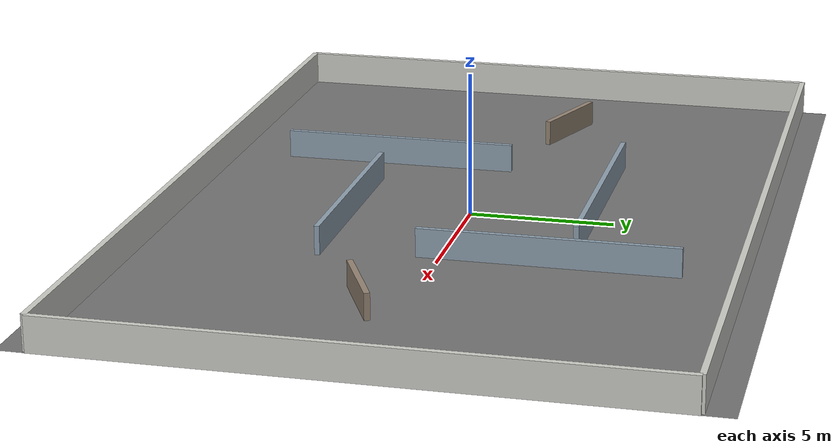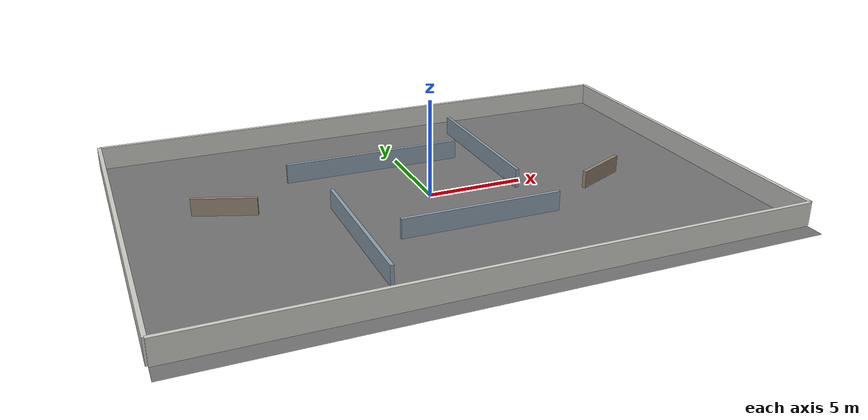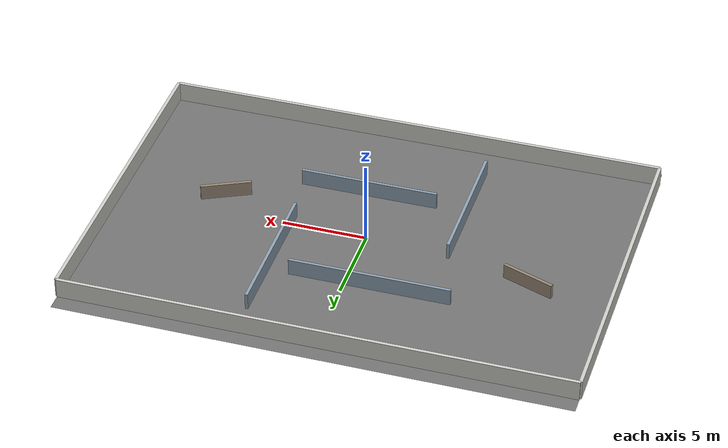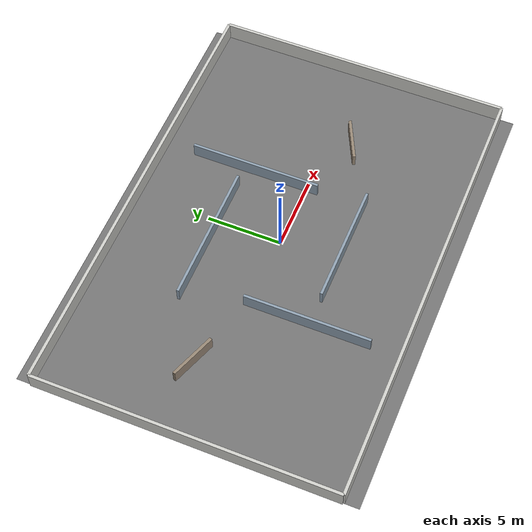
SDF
<?xml version="1.0" ?>
<sdf version="1.6">
  <world name="rescue_walls_easy">
    <plugin name="gazebo_ros_init" filename="libgazebo_ros_init.so"/>
    <plugin name="gazebo_ros_factory" filename="libgazebo_ros_factory.so"/>

    <gui>
      <camera name="camera">
        <pose>0 -24 22 0 0.75 1.57</pose>
      </camera>
    </gui>

    <include>
      <uri>model://sun</uri>
    </include>

    <model name="flat_ground">
      <static>true</static>
      <link name="link">
        <collision name="collision">
          <geometry>
            <plane>
              <normal>0 0 1</normal>
              <size>30 22</size>
            </plane>
          </geometry>
        </collision>
        <visual name="visual">
          <geometry>
            <plane>
              <normal>0 0 1</normal>
              <size>30 22</size>
            </plane>
          </geometry>
          <material>
            <ambient>0.45 0.45 0.45 1</ambient>
            <diffuse>0.45 0.45 0.45 1</diffuse>
          </material>
        </visual>
      </link>
    </model>

    <!-- Outer boundary walls. -->
    <model name="wall_north">
      <static>true</static>
      <pose>0 10 0.6 0 0 0</pose>
      <link name="link">
        <collision name="collision"><geometry><box><size>30 0.2 1.2</size></box></geometry></collision>
        <visual name="visual"><geometry><box><size>30 0.2 1.2</size></box></geometry><material><ambient>0.8 0.8 0.78 1</ambient><diffuse>0.8 0.8 0.78 1</diffuse></material></visual>
      </link>
    </model>
    <model name="wall_south">
      <static>true</static>
      <pose>0 -10 0.6 0 0 0</pose>
      <link name="link">
        <collision name="collision"><geometry><box><size>30 0.2 1.2</size></box></geometry></collision>
        <visual name="visual"><geometry><box><size>30 0.2 1.2</size></box></geometry><material><ambient>0.8 0.8 0.78 1</ambient><diffuse>0.8 0.8 0.78 1</diffuse></material></visual>
      </link>
    </model>
    <model name="wall_west">
      <static>true</static>
      <pose>-15 0 0.6 0 0 0</pose>
      <link name="link">
        <collision name="collision"><geometry><box><size>0.2 20 1.2</size></box></geometry></collision>
        <visual name="visual"><geometry><box><size>0.2 20 1.2</size></box></geometry><material><ambient>0.8 0.8 0.78 1</ambient><diffuse>0.8 0.8 0.78 1</diffuse></material></visual>
      </link>
    </model>
    <model name="wall_east">
      <static>true</static>
      <pose>15 0 0.6 0 0 0</pose>
      <link name="link">
        <collision name="collision"><geometry><box><size>0.2 20 1.2</size></box></geometry></collision>
        <visual name="visual"><geometry><box><size>0.2 20 1.2</size></box></geometry><material><ambient>0.8 0.8 0.78 1</ambient><diffuse>0.8 0.8 0.78 1</diffuse></material></visual>
      </link>
    </model>

    <!-- Interior temporary walls with gaps for simple rescue exploration. -->
    <model name="partition_left_vertical">
      <static>true</static>
      <pose>-5 -3.8 0.5 0 0 0</pose>
      <link name="link">
        <collision name="collision"><geometry><box><size>0.18 8.4 1.0</size></box></geometry></collision>
        <visual name="visual"><geometry><box><size>0.18 8.4 1.0</size></box></geometry><material><ambient>0.55 0.62 0.68 1</ambient><diffuse>0.55 0.62 0.68 1</diffuse></material></visual>
      </link>
    </model>
    <model name="partition_right_vertical">
      <static>true</static>
      <pose>4.5 3.6 0.5 0 0 0</pose>
      <link name="link">
        <collision name="collision"><geometry><box><size>0.18 8.8 1.0</size></box></geometry></collision>
        <visual name="visual"><geometry><box><size>0.18 8.8 1.0</size></box></geometry><material><ambient>0.55 0.62 0.68 1</ambient><diffuse>0.55 0.62 0.68 1</diffuse></material></visual>
      </link>
    </model>
    <model name="partition_lower_horizontal">
      <static>true</static>
      <pose>1 -4 0.5 0 0 0</pose>
      <link name="link">
        <collision name="collision"><geometry><box><size>8.2 0.18 1.0</size></box></geometry></collision>
        <visual name="visual"><geometry><box><size>8.2 0.18 1.0</size></box></geometry><material><ambient>0.55 0.62 0.68 1</ambient><diffuse>0.55 0.62 0.68 1</diffuse></material></visual>
      </link>
    </model>
    <model name="partition_upper_horizontal">
      <static>true</static>
      <pose>-1.5 4.3 0.5 0 0 0</pose>
      <link name="link">
        <collision name="collision"><geometry><box><size>9.5 0.18 1.0</size></box></geometry></collision>
        <visual name="visual"><geometry><box><size>9.5 0.18 1.0</size></box></geometry><material><ambient>0.55 0.62 0.68 1</ambient><diffuse>0.55 0.62 0.68 1</diffuse></material></visual>
      </link>
    </model>
    <model name="short_blocker_a">
      <static>true</static>
      <pose>9 -1.5 0.45 0 0 0.45</pose>
      <link name="link">
        <collision name="collision"><geometry><box><size>3.0 0.2 0.9</size></box></geometry></collision>
        <visual name="visual"><geometry><box><size>3.0 0.2 0.9</size></box></geometry><material><ambient>0.58 0.52 0.45 1</ambient><diffuse>0.58 0.52 0.45 1</diffuse></material></visual>
      </link>
    </model>
    <model name="short_blocker_b">
      <static>true</static>
      <pose>-10 1.6 0.45 0 0 -0.35</pose>
      <link name="link">
        <collision name="collision"><geometry><box><size>3.2 0.2 0.9</size></box></geometry></collision>
        <visual name="visual"><geometry><box><size>3.2 0.2 0.9</size></box></geometry><material><ambient>0.58 0.52 0.45 1</ambient><diffuse>0.58 0.52 0.45 1</diffuse></material></visual>
      </link>
    </model>
  </world>
</sdf>
